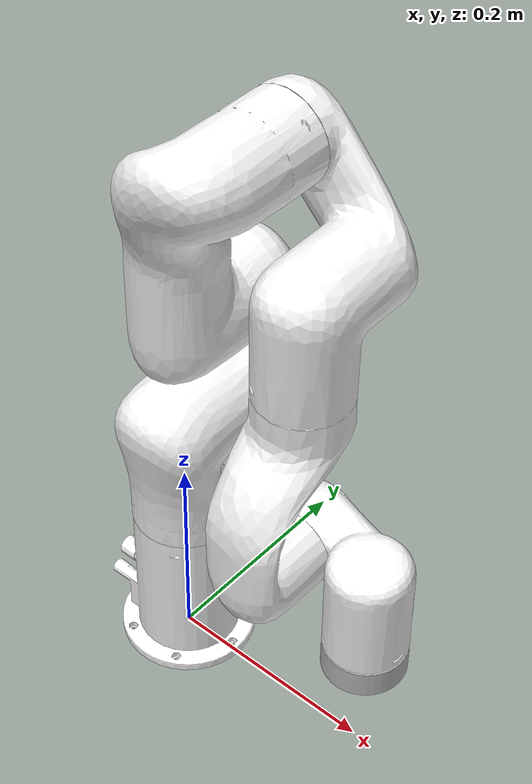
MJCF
<mujoco model="xarm6">
  <compiler angle="radian" autolimits="true"
            meshdir="@XARM_DESCRIPTION_SHARE@/meshes/xarm6/visual"/>

  <option integrator="implicitfast"/>

  <asset>
    <material name="white" rgba="1 1 1 1"/>
    <mesh name="link_base" file="link_base.stl"/>
    <mesh name="link1" file="link1.stl"/>
    <mesh name="link2" file="link2.stl"/>
    <mesh name="link3" file="link3.stl"/>
    <mesh name="link4" file="link4.stl"/>
    <mesh name="link5" file="link5.stl"/>
    <mesh name="link6" file="link6.stl"/>
    <mesh name="end_tool" file="@XARM_DESCRIPTION_SHARE@/meshes/end_tool/collision/end_tool.stl"/>
  </asset>

  <default>
    <default class="xarm6">
      <geom type="mesh" material="white" group="1"/>
      <joint axis="0 0 1" armature="0.1" range="-6.28319 6.28319" frictionloss="1"/>
      <default class="size1">
        <joint damping="10"/>
      </default>
      <default class="size2">
        <joint damping="5"/>
      </default>
      <default class="size3">
        <joint damping="2"/>
      </default>
      <site size="0.001" rgba="1 0 0 1" group="4"/>
    </default>
  </default>

  <worldbody>
    <body name="link_base" childclass="xarm6">
      <geom type="mesh" rgba="1 1 1 1" mesh="link_base"/>
      <body name="link1" pos="0 0 0.267">
        <inertial pos="0.00022 0.02951 -0.0124" quat="0.976139 -0.216078 -0.00387312 -0.0211677" mass="2.3814" diaginertia="0.00585697 0.00544434 0.00312315"/>
        <joint name="joint1" pos="0 0 0" axis="0 0 1" range="-6.28319 6.28319" actuatorfrcrange="-50 50" damping="1" frictionloss="1"/>
        <geom type="mesh" rgba="1 1 1 1" mesh="link1"/>
        <body name="link2" quat="0.707105 -0.707108 0 0">
          <inertial pos="0.03881 -0.22783 0.03496" quat="0.635305 0.753023 0.170976 -0.010531" mass="2.2675" diaginertia="0.0294477 0.0281783 0.00383449"/>
          <joint name="joint2" pos="0 0 0" axis="0 0 1" range="-2.059 2.0944" actuatorfrcrange="-50 50" damping="1" frictionloss="1"/>
          <geom type="mesh" rgba="1 1 1 1" mesh="link2"/>
          <body name="link3" pos="0.0535 -0.2845 0">
            <inertial pos="0.07041 0.11631 0.0107" quat="0.845838 0.425539 -0.293179 0.132369" mass="1.875" diaginertia="0.00714132 0.00699471 0.00196753"/>
            <joint name="joint3" pos="0 0 0" axis="0 0 1" range="-3.927 0.19198" actuatorfrcrange="-32 32" damping="1" frictionloss="1"/>
            <geom type="mesh" rgba="1 1 1 1" mesh="link3"/>
            <body name="link4" pos="0.0775 0.3425 0" quat="0.707105 -0.707108 0 0">
              <inertial pos="-0.00018 0.01798 -0.02291" quat="0.99929 -0.0369702 0.00179434 -0.00701174" mass="1.3192" diaginertia="0.00489614 0.00447403 0.00132609"/>
              <joint name="joint4" pos="0 0 0" axis="0 0 1" range="-6.28319 6.28319" actuatorfrcrange="-32 32" damping="1" frictionloss="1"/>
              <geom type="mesh" rgba="1 1 1 1" mesh="link4"/>
              <body name="link5" quat="0.707105 0.707108 0 0">
                <inertial pos="0.0651 0.03096 0.00315" quat="-0.223008 0.771309 0.16027 0.574163" mass="1.33854" diaginertia="0.00241824 0.00213367 0.00108731"/>
                <joint name="joint5" pos="0 0 0" axis="0 0 1" range="-1.69297 3.14159" actuatorfrcrange="-32 32" damping="1" frictionloss="1"/>
                <geom type="mesh" rgba="1 1 1 1" mesh="link5"/>
                <body name="link6" pos="0.076 0.097 0" quat="0.707105 -0.707108 0 0">
                  <inertial pos="0 -0.00677 -0.01098" quat="0.487612 0.512088 -0.512088 0.487612" mass="0.17" diaginertia="0.000132176 9.3e-05 5.85236e-05"/>
                  <joint name="joint6" pos="0 0 0" axis="0 0 1" range="-6.28319 6.28319" actuatorfrcrange="-20 20" damping="1" frictionloss="1"/>
                  <geom type="mesh" rgba="0.753 0.753 0.753 1" mesh="end_tool"/>
                  <site name="attachment_site"/>
                </body>
              </body>
            </body>
          </body>
        </body>
      </body>
    </body>
  </worldbody>

  <actuator>
    <motor name="act1" joint="joint1" class="size1"/>
    <motor name="act2" joint="joint2" class="size1"/>
    <motor name="act3" joint="joint3" class="size2"/>
    <motor name="act4" joint="joint4" class="size2"/>
    <motor name="act5" joint="joint5" class="size2"/>
    <motor name="act6" joint="joint6" class="size3"/>
  </actuator>

  <sensor>
    <force name="EEForceSensor_fsensor" site="attachment_site"/>
    <torque name="EEForceSensor_tsensor" site="attachment_site"/>
  </sensor>

  <keyframe>
    <key name="home" qpos="0 0 0 .909 0 1.15644 0" ctrl="0 -.247 0 .909 0 1.15644 0"/>
  </keyframe>
</mujoco>
